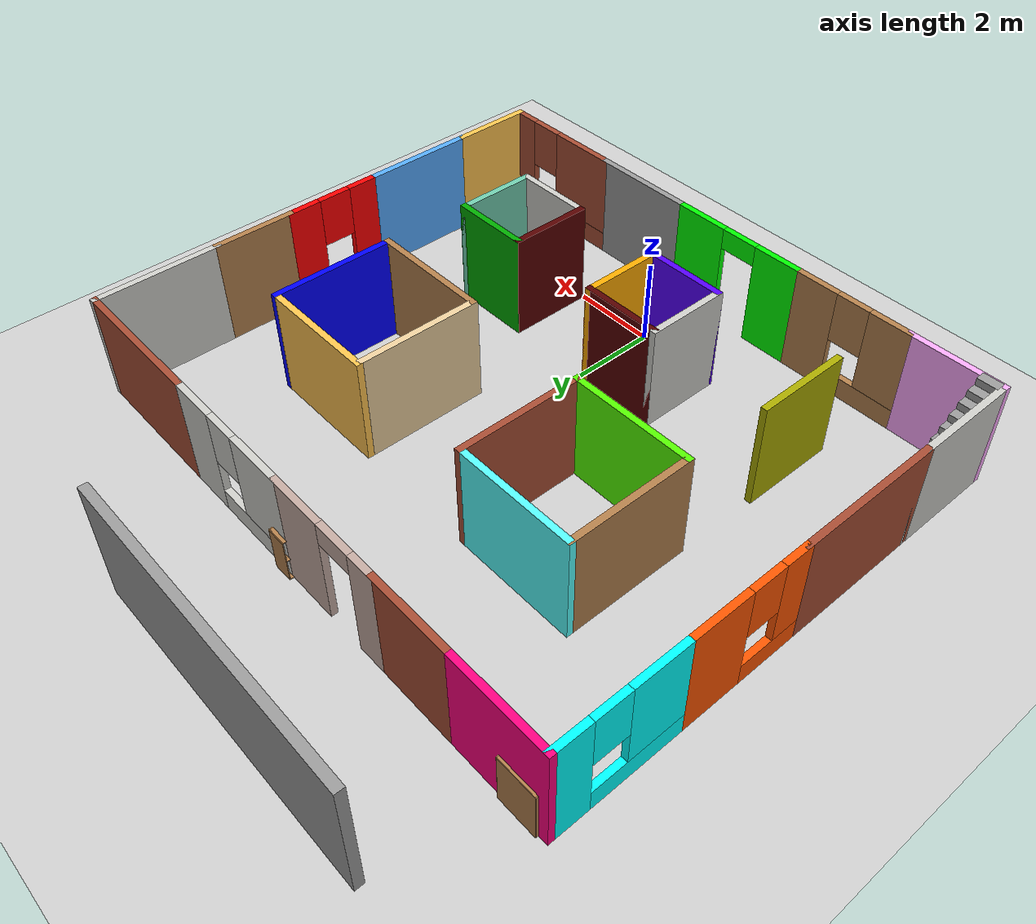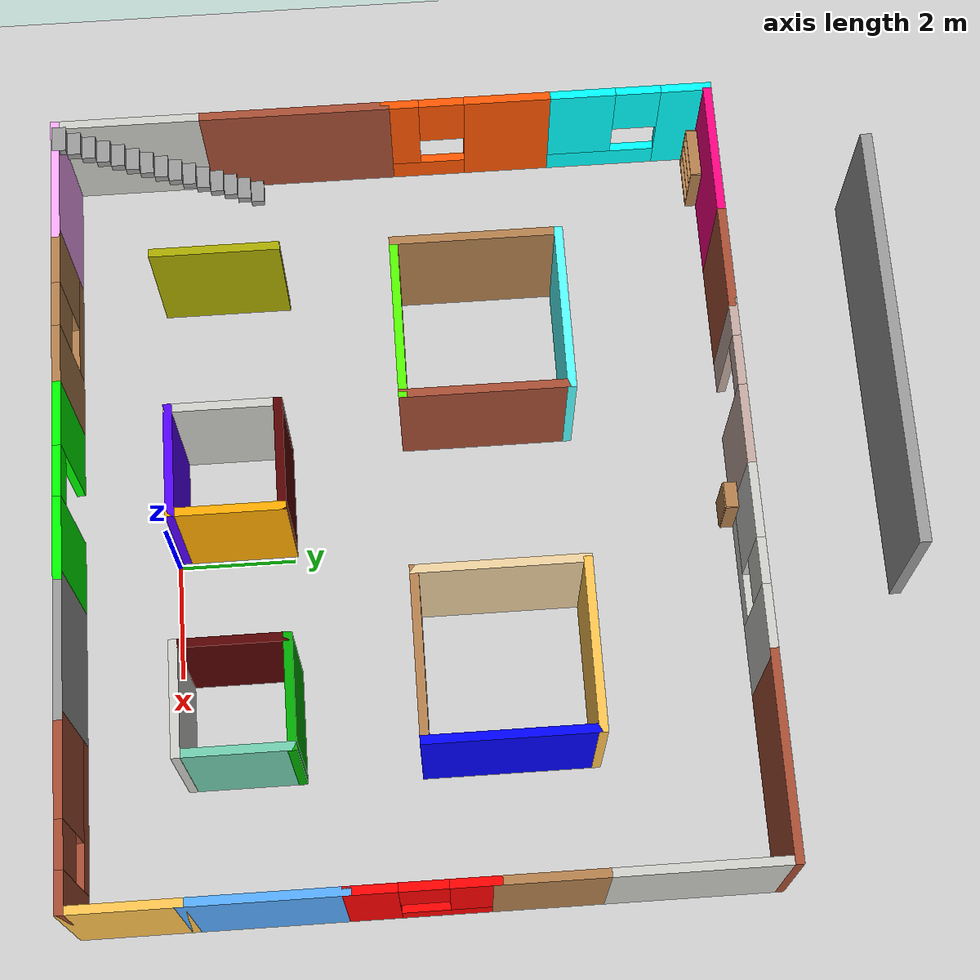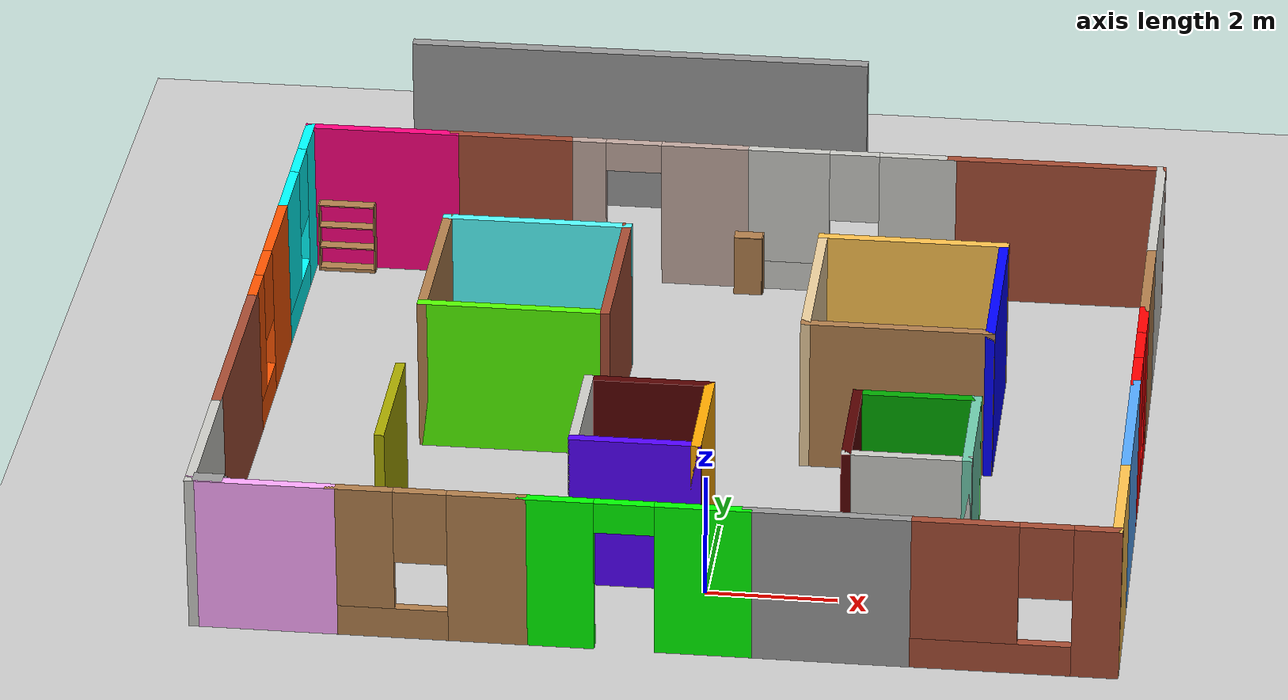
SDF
<sdf version="1.7">
 <world name="default">
  <model name="ground_plane">
   <static>1</static>
   <link name="link">
    <collision name="collision">
     <geometry><plane><normal>0 0 1</normal><size>100 100</size></plane></geometry>
     <surface><friction><ode><mu>100</mu><mu2>50</mu2></ode></friction></surface>
    </collision>
    <visual name="visual">
     <cast_shadows>0</cast_shadows>
     <geometry><plane><normal>0 0 1</normal><size>100 100</size></plane></geometry>
     <material>
      <script><uri>file://media/materials/scripts/gazebo.material</uri><name>Gazebo/Grey</name></script>
     </material>
    </visual>
   </link>
  </model>
  <model name="rainbow_house">
   <pose>-0.62277 4.02769 0 0 -0 0</pose>
   <link name="Stairs_0">
    <visual name="Stairs_0_Visual_0">
     <pose>-6.6068 -2.41526 0.083333 0 -0 0</pose>
     <geometry><box><size>0.454216 0.233333 0.166667</size></box></geometry>
     <material>
      <script><uri>file://media/materials/scripts/gazebo.material</uri><name>Gazebo/Grey</name></script>
      <ambient>1 1 1 1</ambient>
     </material>
     <meta><layer>0</layer></meta>
    </visual>
    <collision name="Stairs_0_Collision_0">
     <geometry><box><size>0.454216 0.233333 0.166667</size></box></geometry>
     <pose>-6.6068 -2.41526 0.083333 0 -0 0</pose>
    </collision>
    <visual name="Stairs_0_Visual_1">
     <pose>-6.6068 -2.64859 0.25 0 -0 0</pose>
     <geometry><box><size>0.454216 0.233333 0.166667</size></box></geometry>
     <material>
      <script><uri>file://media/materials/scripts/gazebo.material</uri><name>Gazebo/Grey</name></script>
      <ambient>1 1 1 1</ambient>
     </material>
     <meta><layer>0</layer></meta>
    </visual>
    <collision name="Stairs_0_Collision_1">
     <geometry><box><size>0.454216 0.233333 0.166667</size></box></geometry>
     <pose>-6.6068 -2.64859 0.25 0 -0 0</pose>
    </collision>
    <visual name="Stairs_0_Visual_2">
     <pose>-6.6068 -2.88193 0.416667 0 -0 0</pose>
     <geometry><box><size>0.454216 0.233333 0.166667</size></box></geometry>
     <material>
      <script><uri>file://media/materials/scripts/gazebo.material</uri><name>Gazebo/Grey</name></script>
      <ambient>1 1 1 1</ambient>
     </material>
     <meta><layer>0</layer></meta>
    </visual>
    <collision name="Stairs_0_Collision_2">
     <geometry><box><size>0.454216 0.233333 0.166667</size></box></geometry>
     <pose>-6.6068 -2.88193 0.416667 0 -0 0</pose>
    </collision>
    <visual name="Stairs_0_Visual_3">
     <pose>-6.6068 -3.11526 0.583333 0 -0 0</pose>
     <geometry><box><size>0.454216 0.233333 0.166667</size></box></geometry>
     <material>
      <script><uri>file://media/materials/scripts/gazebo.material</uri><name>Gazebo/Grey</name></script>
      <ambient>1 1 1 1</ambient>
     </material>
     <meta><layer>0</layer></meta>
    </visual>
    <collision name="Stairs_0_Collision_3">
     <geometry><box><size>0.454216 0.233333 0.166667</size></box></geometry>
     <pose>-6.6068 -3.11526 0.583333 0 -0 0</pose>
    </collision>
    <visual name="Stairs_0_Visual_4">
     <pose>-6.6068 -3.34859 0.75 0 -0 0</pose>
     <geometry><box><size>0.454216 0.233333 0.166667</size></box></geometry>
     <material>
      <script><uri>file://media/materials/scripts/gazebo.material</uri><name>Gazebo/Grey</name></script>
      <ambient>1 1 1 1</ambient>
     </material>
     <meta><layer>0</layer></meta>
    </visual>
    <collision name="Stairs_0_Collision_4">
     <geometry><box><size>0.454216 0.233333 0.166667</size></box></geometry>
     <pose>-6.6068 -3.34859 0.75 0 -0 0</pose>
    </collision>
    <visual name="Stairs_0_Visual_5">
     <pose>-6.6068 -3.58193 0.916667 0 -0 0</pose>
     <geometry><box><size>0.454216 0.233333 0.166667</size></box></geometry>
     <material>
      <script><uri>file://media/materials/scripts/gazebo.material</uri><name>Gazebo/Grey</name></script>
      <ambient>1 1 1 1</ambient>
     </material>
     <meta><layer>0</layer></meta>
    </visual>
    <collision name="Stairs_0_Collision_5">
     <geometry><box><size>0.454216 0.233333 0.166667</size></box></geometry>
     <pose>-6.6068 -3.58193 0.916667 0 -0 0</pose>
    </collision>
    <visual name="Stairs_0_Visual_6">
     <pose>-6.6068 -3.81526 1.08333 0 -0 0</pose>
     <geometry><box><size>0.454216 0.233333 0.166667</size></box></geometry>
     <material>
      <script><uri>file://media/materials/scripts/gazebo.material</uri><name>Gazebo/Grey</name></script>
      <ambient>1 1 1 1</ambient>
     </material>
     <meta><layer>0</layer></meta>
    </visual>
    <collision name="Stairs_0_Collision_6">
     <geometry><box><size>0.454216 0.233333 0.166667</size></box></geometry>
     <pose>-6.6068 -3.81526 1.08333 0 -0 0</pose>
    </collision>
    <visual name="Stairs_0_Visual_7">
     <pose>-6.6068 -4.04859 1.25 0 -0 0</pose>
     <geometry><box><size>0.454216 0.233333 0.166667</size></box></geometry>
     <material>
      <script><uri>file://media/materials/scripts/gazebo.material</uri><name>Gazebo/Grey</name></script>
      <ambient>1 1 1 1</ambient>
     </material>
     <meta><layer>0</layer></meta>
    </visual>
    <collision name="Stairs_0_Collision_7">
     <geometry><box><size>0.454216 0.233333 0.166667</size></box></geometry>
     <pose>-6.6068 -4.04859 1.25 0 -0 0</pose>
    </collision>
    <visual name="Stairs_0_Visual_8">
     <pose>-6.6068 -4.28193 1.41667 0 -0 0</pose>
     <geometry><box><size>0.454216 0.233333 0.166667</size></box></geometry>
     <material>
      <script><uri>file://media/materials/scripts/gazebo.material</uri><name>Gazebo/Grey</name></script>
      <ambient>1 1 1 1</ambient>
     </material>
     <meta><layer>0</layer></meta>
    </visual>
    <collision name="Stairs_0_Collision_8">
     <geometry><box><size>0.454216 0.233333 0.166667</size></box></geometry>
     <pose>-6.6068 -4.28193 1.41667 0 -0 0</pose>
    </collision>
    <visual name="Stairs_0_Visual_9">
     <pose>-6.6068 -4.51526 1.58333 0 -0 0</pose>
     <geometry><box><size>0.454216 0.233333 0.166667</size></box></geometry>
     <material>
      <script><uri>file://media/materials/scripts/gazebo.material</uri><name>Gazebo/Grey</name></script>
      <ambient>1 1 1 1</ambient>
     </material>
     <meta><layer>0</layer></meta>
    </visual>
    <collision name="Stairs_0_Collision_9">
     <geometry><box><size>0.454216 0.233333 0.166667</size></box></geometry>
     <pose>-6.6068 -4.51526 1.58333 0 -0 0</pose>
    </collision>
    <visual name="Stairs_0_Visual_10">
     <pose>-6.6068 -4.74859 1.75 0 -0 0</pose>
     <geometry><box><size>0.454216 0.233333 0.166667</size></box></geometry>
     <material>
      <script><uri>file://media/materials/scripts/gazebo.material</uri><name>Gazebo/Grey</name></script>
      <ambient>1 1 1 1</ambient>
     </material>
     <meta><layer>0</layer></meta>
    </visual>
    <collision name="Stairs_0_Collision_10">
     <geometry><box><size>0.454216 0.233333 0.166667</size></box></geometry>
     <pose>-6.6068 -4.74859 1.75 0 -0 0</pose>
    </collision>
    <visual name="Stairs_0_Visual_11">
     <pose>-6.6068 -4.98193 1.91667 0 -0 0</pose>
     <geometry><box><size>0.454216 0.233333 0.166667</size></box></geometry>
     <material>
      <script><uri>file://media/materials/scripts/gazebo.material</uri><name>Gazebo/Grey</name></script>
      <ambient>1 1 1 1</ambient>
     </material>
     <meta><layer>0</layer></meta>
    </visual>
    <collision name="Stairs_0_Collision_11">
     <geometry><box><size>0.454216 0.233333 0.166667</size></box></geometry>
     <pose>-6.6068 -4.98193 1.91667 0 -0 0</pose>
    </collision>
    <visual name="Stairs_0_Visual_12">
     <pose>-6.6068 -5.21526 2.08333 0 -0 0</pose>
     <geometry><box><size>0.454216 0.233333 0.166667</size></box></geometry>
     <material>
      <script><uri>file://media/materials/scripts/gazebo.material</uri><name>Gazebo/Grey</name></script>
      <ambient>1 1 1 1</ambient>
     </material>
     <meta><layer>0</layer></meta>
    </visual>
    <collision name="Stairs_0_Collision_12">
     <geometry><box><size>0.454216 0.233333 0.166667</size></box></geometry>
     <pose>-6.6068 -5.21526 2.08333 0 -0 0</pose>
    </collision>
    <visual name="Stairs_0_Visual_13">
     <pose>-6.6068 -5.44859 2.25 0 -0 0</pose>
     <geometry><box><size>0.454216 0.233333 0.166667</size></box></geometry>
     <material>
      <script><uri>file://media/materials/scripts/gazebo.material</uri><name>Gazebo/Grey</name></script>
      <ambient>1 1 1 1</ambient>
     </material>
     <meta><layer>0</layer></meta>
    </visual>
    <collision name="Stairs_0_Collision_13">
     <geometry><box><size>0.454216 0.233333 0.166667</size></box></geometry>
     <pose>-6.6068 -5.44859 2.25 0 -0 0</pose>
    </collision>
    <visual name="Stairs_0_Visual_14">
     <pose>-6.6068 -5.68193 2.41667 0 -0 0</pose>
     <geometry><box><size>0.454216 0.233333 0.166667</size></box></geometry>
     <material>
      <script><uri>file://media/materials/scripts/gazebo.material</uri><name>Gazebo/Grey</name></script>
      <ambient>1 1 1 1</ambient>
     </material>
     <meta><layer>0</layer></meta>
    </visual>
    <collision name="Stairs_0_Collision_14">
     <geometry><box><size>0.454216 0.233333 0.166667</size></box></geometry>
     <pose>-6.6068 -5.68193 2.41667 0 -0 0</pose>
    </collision>
   </link>
   <link name="Wall_10">
    <collision name="Wall_10_Collision">
     <geometry><box><size>2 0.15 2.5</size></box></geometry>
     <pose>0 0 1.25 0 -0 0</pose>
    </collision>
    <visual name="Wall_10_Visual">
     <pose>0 0 1.25 0 -0 0</pose>
     <geometry><box><size>2 0.15 2.5</size></box></geometry>
     <material>
      <script><uri>file://media/materials/scripts/gazebo.material</uri><name>Gazebo/Grey</name></script>
      <ambient>0.333333 0 0 1</ambient>
     </material>
     <meta><layer>0</layer></meta>
    </visual>
    <pose>2.71455 -2.97747 0 0 -0 1.5708</pose>
   </link>
   <link name="Wall_11">
    <collision name="Wall_11_Collision">
     <geometry><box><size>1.96045 0.15 2.5</size></box></geometry>
     <pose>0 0 1.25 0 -0 0</pose>
    </collision>
    <visual name="Wall_11_Visual">
     <pose>0 0 1.25 0 -0 0</pose>
     <geometry><box><size>1.96045 0.15 2.5</size></box></geometry>
     <material>
      <script><uri>file://media/materials/scripts/gazebo.material</uri><name>Gazebo/Grey</name></script>
      <ambient>0 0.666667 0 1</ambient>
     </material>
     <meta><layer>0</layer></meta>
    </visual>
    <pose>3.61978 -2.05 0 0 -0 0</pose>
   </link>
   <link name="Wall_12">
    <collision name="Wall_12_Collision">
     <geometry><box><size>2 0.15 2.5</size></box></geometry>
     <pose>0 0 1.25 0 -0 0</pose>
    </collision>
    <visual name="Wall_12_Visual">
     <pose>0 0 1.25 0 -0 0</pose>
     <geometry><box><size>2 0.15 2.5</size></box></geometry>
     <material>
      <script><uri>file://media/materials/scripts/gazebo.material</uri><name>Gazebo/Grey</name></script>
      <ambient>0.435294 0.796078 0.67451 1</ambient>
     </material>
     <meta><layer>0</layer></meta>
    </visual>
    <pose>4.52253 -2.975 0 0 -0 -1.5708</pose>
   </link>
   <link name="Wall_13">
    <collision name="Wall_13_Collision">
     <geometry><box><size>1.96045 0.15 2.5</size></box></geometry>
     <pose>0 0 1.25 0 -0 0</pose>
    </collision>
    <visual name="Wall_13_Visual">
     <pose>0 0 1.25 0 -0 0</pose>
     <geometry><box><size>1.96045 0.15 2.5</size></box></geometry>
     <material>
      <script><uri>file://media/materials/scripts/gazebo.material</uri><name>Gazebo/CeilingTiled</name></script>
      <ambient>1 1 1 1</ambient>
     </material>
     <meta><layer>0</layer></meta>
    </visual>
    <pose>3.61978 -3.9 0 0 -0 3.14159</pose>
   </link>
   <link name="Wall_2">
    <collision name="Wall_2_Collision">
     <geometry><box><size>2 0.15 2.5</size></box></geometry>
     <pose>0 0 1.25 0 -0 0</pose>
    </collision>
    <visual name="Wall_2_Visual">
     <pose>0 0 1.25 0 -0 0</pose>
     <geometry><box><size>2 0.15 2.5</size></box></geometry>
     <material>
      <script><uri>file://media/materials/scripts/gazebo.material</uri><name>Gazebo/CeilingTiled</name></script>
      <ambient>0.435294 0.796078 0.67451 1</ambient>
     </material>
     <meta><layer>0</layer></meta>
    </visual>
    <pose>-1.38095 -2.975 0 0 -0 1.5708</pose>
   </link>
   <link name="Wall_22">
    <collision name="Wall_22_Collision">
     <geometry><box><size>3 0.15 2.5</size></box></geometry>
     <pose>0 0 1.25 0 -0 0</pose>
    </collision>
    <visual name="Wall_22_Visual">
     <pose>0 0 1.25 0 -0 0</pose>
     <geometry><box><size>3 0.15 2.5</size></box></geometry>
     <material>
      <script><uri>file://media/materials/scripts/gazebo.material</uri><name>Gazebo/Wood</name></script>
      <ambient>1 1 1 1</ambient>
     </material>
     <meta><layer>0</layer></meta>
    </visual>
    <pose>3.14584 0.047664 0 0 -0 3.14159</pose>
   </link>
   <link name="Wall_25">
    <collision name="Wall_25_Collision">
     <geometry><box><size>3 0.15 2.5</size></box></geometry>
     <pose>0 0 1.25 0 -0 0</pose>
    </collision>
    <visual name="Wall_25_Visual">
     <pose>0 0 1.25 0 -0 0</pose>
     <geometry><box><size>3 0.15 2.5</size></box></geometry>
     <material>
      <script><uri>file://media/materials/scripts/gazebo.material</uri><name>Gazebo/Grey</name></script>
      <ambient>0 0 1 1</ambient>
     </material>
     <meta><layer>0</layer></meta>
    </visual>
    <pose>4.57084 1.47266 0 0 -0 1.5708</pose>
   </link>
   <link name="Wall_26">
    <collision name="Wall_26_Collision">
     <geometry><box><size>3 0.15 2.5</size></box></geometry>
     <pose>0 0 1.25 0 -0 0</pose>
    </collision>
    <visual name="Wall_26_Visual">
     <pose>0 0 1.25 0 -0 0</pose>
     <geometry><box><size>3 0.15 2.5</size></box></geometry>
     <material>
      <script><uri>file://media/materials/scripts/gazebo.material</uri><name>Gazebo/Grey</name></script>
      <ambient>1 0.764706 0.305882 1</ambient>
     </material>
     <meta><layer>0</layer></meta>
    </visual>
    <pose>3.14584 2.89766 0 0 -0 3.14159</pose>
   </link>
   <link name="Wall_27">
    <collision name="Wall_27_Collision">
     <geometry><box><size>3 0.15 2.5</size></box></geometry>
     <pose>0 0 1.25 0 -0 0</pose>
    </collision>
    <visual name="Wall_27_Visual">
     <pose>0 0 1.25 0 -0 0</pose>
     <geometry><box><size>3 0.15 2.5</size></box></geometry>
     <material>
      <script><uri>file://media/materials/scripts/gazebo.material</uri><name>Gazebo/Grey</name></script>
      <ambient>0.921569 0.807843 0.615686 1</ambient>
     </material>
     <meta><layer>0</layer></meta>
    </visual>
    <pose>1.72084 1.47266 0 0 -0 -1.5708</pose>
   </link>
   <link name="Wall_33">
    <collision name="Wall_33_Collision">
     <geometry><box><size>3 0.15 2.5</size></box></geometry>
     <pose>0 0 1.25 0 -0 0</pose>
    </collision>
    <visual name="Wall_33_Visual">
     <pose>0 0 1.25 0 -0 0</pose>
     <geometry><box><size>3 0.15 2.5</size></box></geometry>
     <material>
      <script><uri>file://media/materials/scripts/gazebo.material</uri><name>Gazebo/Bricks</name></script>
      <ambient>1 1 1 1</ambient>
     </material>
     <meta><layer>0</layer></meta>
    </visual>
    <pose>-1.37916 1.47266 0 0 -0 1.5708</pose>
   </link>
   <link name="Wall_34">
    <collision name="Wall_34_Collision">
     <geometry><box><size>3 0.15 2.5</size></box></geometry>
     <pose>0 0 1.25 0 -0 0</pose>
    </collision>
    <visual name="Wall_34_Visual">
     <pose>0 0 1.25 0 -0 0</pose>
     <geometry><box><size>3 0.15 2.5</size></box></geometry>
     <material>
      <script><uri>file://media/materials/scripts/gazebo.material</uri><name>Gazebo/Grey</name></script>
      <ambient>0.333333 1 1 1</ambient>
     </material>
     <meta><layer>0</layer></meta>
    </visual>
    <pose>-2.80416 2.89766 0 0 -0 3.14159</pose>
   </link>
   <link name="Wall_35">
    <collision name="Wall_35_Collision">
     <geometry><box><size>3 0.15 2.5</size></box></geometry>
     <pose>0 0 1.25 0 -0 0</pose>
    </collision>
    <visual name="Wall_35_Visual">
     <pose>0 0 1.25 0 -0 0</pose>
     <geometry><box><size>3 0.15 2.5</size></box></geometry>
     <material>
      <script><uri>file://media/materials/scripts/gazebo.material</uri><name>Gazebo/Wood</name></script>
      <ambient>1 1 1 1</ambient>
     </material>
     <meta><layer>0</layer></meta>
    </visual>
    <pose>-4.22916 1.47266 0 0 -0 -1.5708</pose>
   </link>
   <link name="Wall_36">
    <collision name="Wall_36_Collision">
     <geometry><box><size>3 0.15 2.5</size></box></geometry>
     <pose>0 0 1.25 0 -0 0</pose>
    </collision>
    <visual name="Wall_36_Visual">
     <pose>0 0 1.25 0 -0 0</pose>
     <geometry><box><size>3 0.15 2.5</size></box></geometry>
     <material>
      <script><uri>file://media/materials/scripts/gazebo.material</uri><name>Gazebo/Grey</name></script>
      <ambient>0.333333 1 0 1</ambient>
     </material>
     <meta><layer>0</layer></meta>
    </visual>
    <pose>-2.80416 0.047664 0 0 -0 0</pose>
   </link>
   <link name="Wall_4">
    <collision name="Wall_4_Collision">
     <geometry><box><size>2 0.15 2.5</size></box></geometry>
     <pose>0 0 1.25 0 -0 0</pose>
    </collision>
    <visual name="Wall_4_Visual">
     <pose>0 0 1.25 0 -0 0</pose>
     <geometry><box><size>2 0.15 2.5</size></box></geometry>
     <material>
      <script><uri>file://media/materials/scripts/gazebo.material</uri><name>Gazebo/Grey</name></script>
      <ambient>0.333333 0 0 1</ambient>
     </material>
     <meta><layer>0</layer></meta>
    </visual>
    <pose>-0.455946 -2.05 0 0 -0 0</pose>
   </link>
   <link name="Wall_42">
    <collision name="Wall_42_Collision">
     <geometry><box><size>2 0.15 2.5</size></box></geometry>
     <pose>0 0 1.25 0 -0 0</pose>
    </collision>
    <visual name="Wall_42_Visual">
     <pose>0 0 1.25 0 -0 0</pose>
     <geometry><box><size>2 0.15 2.5</size></box></geometry>
     <material>
      <script><uri>file://media/materials/scripts/gazebo.material</uri><name>Gazebo/Grey</name></script>
      <ambient>1 0.764706 0.305882 1</ambient>
     </material>
     <meta><layer>0</layer></meta>
    </visual>
    <pose>6.875 -4.825 0 0 -0 -1.5708</pose>
   </link>
   <link name="Wall_44">
    <collision name="Wall_44_Collision">
     <geometry><box><size>2.75 0.15 2.5</size></box></geometry>
     <pose>0 0 1.25 0 -0 0</pose>
    </collision>
    <visual name="Wall_44_Visual">
     <pose>0 0 1.25 0 -0 0</pose>
     <geometry><box><size>2.75 0.15 2.5</size></box></geometry>
     <material>
      <script><uri>file://media/materials/scripts/gazebo.material</uri><name>Gazebo/Grey</name></script>
      <ambient>0.333333 0.666667 1 1</ambient>
     </material>
     <meta><layer>0</layer></meta>
    </visual>
    <pose>6.875 -2.6 0 0 -0 1.5708</pose>
   </link>
   <link name="Wall_45">
    <pose>6.875 -0.125 0 0 -0 1.5708</pose>
    <visual name="Wall_45_Visual_0">
     <pose>-0.81636 0 1.25 0 -0 0</pose>
     <geometry><box><size>0.86728 0.15 2.5</size></box></geometry>
     <material>
      <script><uri>file://media/materials/scripts/gazebo.material</uri><name>Gazebo/Grey</name></script>
      <ambient>1 0 0 1</ambient>
     </material>
     <meta><layer>0</layer></meta>
    </visual>
    <collision name="Wall_45_Collision_0">
     <geometry><box><size>0.86728 0.15 2.5</size></box></geometry>
     <pose>-0.81636 0 1.25 0 -0 0</pose>
    </collision>
    <visual name="Wall_45_Visual_1">
     <pose>0.43364 0 0.25 0 -0 0</pose>
     <geometry><box><size>1.63272 0.15 0.5</size></box></geometry>
     <material>
      <script><uri>file://media/materials/scripts/gazebo.material</uri><name>Gazebo/Grey</name></script>
      <ambient>1 0 0 1</ambient>
     </material>
     <meta><layer>0</layer></meta>
    </visual>
    <collision name="Wall_45_Collision_1">
     <geometry><box><size>1.63272 0.15 0.5</size></box></geometry>
     <pose>0.43364 0 0.25 0 -0 0</pose>
    </collision>
    <visual name="Wall_45_Visual_2">
     <pose>0.83364 0 1.5 0 -0 0</pose>
     <geometry><box><size>0.83272 0.15 2</size></box></geometry>
     <material>
      <script><uri>file://media/materials/scripts/gazebo.material</uri><name>Gazebo/Grey</name></script>
      <ambient>1 0 0 1</ambient>
     </material>
     <meta><layer>0</layer></meta>
    </visual>
    <collision name="Wall_45_Collision_2">
     <geometry><box><size>0.83272 0.15 2</size></box></geometry>
     <pose>0.83364 0 1.5 0 -0 0</pose>
    </collision>
    <visual name="Wall_45_Visual_3">
     <pose>0.01728 0 1.9 0 -0 0</pose>
     <geometry><box><size>0.8 0.15 1.2</size></box></geometry>
     <material>
      <script><uri>file://media/materials/scripts/gazebo.material</uri><name>Gazebo/Grey</name></script>
      <ambient>1 0 0 1</ambient>
     </material>
     <meta><layer>0</layer></meta>
    </visual>
    <collision name="Wall_45_Collision_3">
     <geometry><box><size>0.8 0.15 1.2</size></box></geometry>
     <pose>0.01728 0 1.9 0 -0 0</pose>
    </collision>
   </link>
   <link name="Wall_46">
    <collision name="Wall_46_Collision">
     <geometry><box><size>2 0.15 2.5</size></box></geometry>
     <pose>0 0 1.25 0 -0 0</pose>
    </collision>
    <visual name="Wall_46_Visual">
     <pose>0 0 1.25 0 -0 0</pose>
     <geometry><box><size>2 0.15 2.5</size></box></geometry>
     <material>
      <script><uri>file://media/materials/scripts/gazebo.material</uri><name>Gazebo/Wood</name></script>
      <ambient>1 1 1 1</ambient>
     </material>
     <meta><layer>0</layer></meta>
    </visual>
    <pose>6.875 1.975 0 0 -0 1.5708</pose>
   </link>
   <link name="Wall_48">
    <collision name="Wall_48_Collision">
     <geometry><box><size>3 0.15 2.5</size></box></geometry>
     <pose>0 0 1.25 0 -0 0</pose>
    </collision>
    <visual name="Wall_48_Visual">
     <pose>0 0 1.25 0 -0 0</pose>
     <geometry><box><size>3 0.15 2.5</size></box></geometry>
     <material>
      <script><uri>file://media/materials/scripts/gazebo.material</uri><name>Gazebo/CeilingTiled</name></script>
      <ambient>1 1 1 1</ambient>
     </material>
     <meta><layer>0</layer></meta>
    </visual>
    <pose>6.875 4.325 0 0 -0 1.5708</pose>
   </link>
   <link name="Wall_49">
    <collision name="Wall_49_Collision">
     <geometry><box><size>3.5 0.15 2.5</size></box></geometry>
     <pose>0 0 1.25 0 -0 0</pose>
    </collision>
    <visual name="Wall_49_Visual">
     <pose>0 0 1.25 0 -0 0</pose>
     <geometry><box><size>3.5 0.15 2.5</size></box></geometry>
     <material>
      <script><uri>file://media/materials/scripts/gazebo.material</uri><name>Gazebo/Bricks</name></script>
      <ambient>1 1 1 1</ambient>
     </material>
     <meta><layer>0</layer></meta>
    </visual>
    <pose>5.2 5.75 0 0 -0 3.14159</pose>
   </link>
   <link name="Wall_5">
    <collision name="Wall_5_Collision">
     <geometry><box><size>2 0.15 2.5</size></box></geometry>
     <pose>0 0 1.25 0 -0 0</pose>
    </collision>
    <visual name="Wall_5_Visual">
     <pose>0 0 1.25 0 -0 0</pose>
     <geometry><box><size>2 0.15 2.5</size></box></geometry>
     <material>
      <script><uri>file://media/materials/scripts/gazebo.material</uri><name>Gazebo/Grey</name></script>
      <ambient>1 0.666667 0 1</ambient>
     </material>
     <meta><layer>0</layer></meta>
    </visual>
    <pose>0.469054 -2.975 0 0 -0 -1.5708</pose>
   </link>
   <link name="Wall_50">
    <pose>1.85 5.75 0 0 -0 3.14159</pose>
    <visual name="Wall_50_Visual_0">
     <pose>-1.13041 0 1.25 0 -0 0</pose>
     <geometry><box><size>1.23918 0.15 2.5</size></box></geometry>
     <material>
      <script><uri>file://media/materials/scripts/gazebo.material</uri><name>Gazebo/CeilingTiled</name></script>
      <ambient>1 1 1 1</ambient>
     </material>
     <meta><layer>0</layer></meta>
    </visual>
    <collision name="Wall_50_Collision_0">
     <geometry><box><size>1.23918 0.15 2.5</size></box></geometry>
     <pose>-1.13041 0 1.25 0 -0 0</pose>
    </collision>
    <visual name="Wall_50_Visual_1">
     <pose>0.619589 0 0.25 0 -0 0</pose>
     <geometry><box><size>2.26082 0.15 0.5</size></box></geometry>
     <material>
      <script><uri>file://media/materials/scripts/gazebo.material</uri><name>Gazebo/CeilingTiled</name></script>
      <ambient>1 1 1 1</ambient>
     </material>
     <meta><layer>0</layer></meta>
    </visual>
    <collision name="Wall_50_Collision_1">
     <geometry><box><size>2.26082 0.15 0.5</size></box></geometry>
     <pose>0.619589 0 0.25 0 -0 0</pose>
    </collision>
    <visual name="Wall_50_Visual_2">
     <pose>1.01959 0 1.5 0 -0 0</pose>
     <geometry><box><size>1.46082 0.15 2</size></box></geometry>
     <material>
      <script><uri>file://media/materials/scripts/gazebo.material</uri><name>Gazebo/CeilingTiled</name></script>
      <ambient>1 1 1 1</ambient>
     </material>
     <meta><layer>0</layer></meta>
    </visual>
    <collision name="Wall_50_Collision_2">
     <geometry><box><size>1.46082 0.15 2</size></box></geometry>
     <pose>1.01959 0 1.5 0 -0 0</pose>
    </collision>
    <visual name="Wall_50_Visual_3">
     <pose>-0.110823 0 1.9 0 -0 0</pose>
     <geometry><box><size>0.8 0.15 1.2</size></box></geometry>
     <material>
      <script><uri>file://media/materials/scripts/gazebo.material</uri><name>Gazebo/CeilingTiled</name></script>
      <ambient>1 1 1 1</ambient>
     </material>
     <meta><layer>0</layer></meta>
    </visual>
    <collision name="Wall_50_Collision_3">
     <geometry><box><size>0.8 0.15 1.2</size></box></geometry>
     <pose>-0.110823 0 1.9 0 -0 0</pose>
    </collision>
   </link>
   <link name="Wall_52">
    <pose>-1.25 5.75 0 0 -0 3.14159</pose>
    <visual name="Wall_52_Visual_0">
     <pose>-0.796809 0 1.25 0 -0 0</pose>
     <geometry><box><size>1.40638 0.15 2.5</size></box></geometry>
     <material>
      <script><uri>file://media/materials/scripts/gazebo.material</uri><name>Gazebo/Grey</name></script>
      <ambient>0.760784 0.662745 0.627451 1</ambient>
     </material>
     <meta><layer>0</layer></meta>
    </visual>
    <collision name="Wall_52_Collision_0">
     <geometry><box><size>1.40638 0.15 2.5</size></box></geometry>
     <pose>-0.796809 0 1.25 0 -0 0</pose>
    </collision>
    <visual name="Wall_52_Visual_1">
     <pose>1.15319 0 1.25 0 -0 0</pose>
     <geometry><box><size>0.693617 0.15 2.5</size></box></geometry>
     <material>
      <script><uri>file://media/materials/scripts/gazebo.material</uri><name>Gazebo/Grey</name></script>
      <ambient>0.760784 0.662745 0.627451 1</ambient>
     </material>
     <meta><layer>0</layer></meta>
    </visual>
    <collision name="Wall_52_Collision_1">
     <geometry><box><size>0.693617 0.15 2.5</size></box></geometry>
     <pose>1.15319 0 1.25 0 -0 0</pose>
    </collision>
    <visual name="Wall_52_Visual_2">
     <pose>0.356383 0 2.25 0 -0 0</pose>
     <geometry><box><size>0.9 0.15 0.5</size></box></geometry>
     <material>
      <script><uri>file://media/materials/scripts/gazebo.material</uri><name>Gazebo/Grey</name></script>
      <ambient>0.760784 0.662745 0.627451 1</ambient>
     </material>
     <meta><layer>0</layer></meta>
    </visual>
    <collision name="Wall_52_Collision_2">
     <geometry><box><size>0.9 0.15 0.5</size></box></geometry>
     <pose>0.356383 0 2.25 0 -0 0</pose>
    </collision>
   </link>
   <link name="Wall_53">
    <collision name="Wall_53_Collision">
     <geometry><box><size>2 0.15 2.5</size></box></geometry>
     <pose>0 0 1.25 0 -0 0</pose>
    </collision>
    <visual name="Wall_53_Visual">
     <pose>0 0 1.25 0 -0 0</pose>
     <geometry><box><size>2 0.15 2.5</size></box></geometry>
     <material>
      <script><uri>file://media/materials/scripts/gazebo.material</uri><name>Gazebo/Bricks</name></script>
      <ambient>1 1 1 1</ambient>
     </material>
     <meta><layer>0</layer></meta>
    </visual>
    <pose>-3.6 5.75 0 0 -0 3.14159</pose>
   </link>
   <link name="Wall_56">
    <collision name="Wall_56_Collision">
     <geometry><box><size>2.5 0.15 2.5</size></box></geometry>
     <pose>0 0 1.25 0 -0 0</pose>
    </collision>
    <visual name="Wall_56_Visual">
     <pose>0 0 1.25 0 -0 0</pose>
     <geometry><box><size>2.5 0.15 2.5</size></box></geometry>
     <material>
      <script><uri>file://media/materials/scripts/gazebo.material</uri><name>Gazebo/Grey</name></script>
      <ambient>1 0 0.498039 1</ambient>
     </material>
     <meta><layer>0</layer></meta>
    </visual>
    <pose>-5.7 5.75 0 0 -0 3.14159</pose>
   </link>
   <link name="Wall_57">
    <pose>-6.875 4.325 0 0 -0 -1.5708</pose>
    <visual name="Wall_57_Visual_0">
     <pose>-1.05348 0 1.25 0 -0 0</pose>
     <geometry><box><size>0.893041 0.15 2.5</size></box></geometry>
     <material>
      <script><uri>file://media/materials/scripts/gazebo.material</uri><name>Gazebo/Grey</name></script>
      <ambient>0 1 1 1</ambient>
     </material>
     <meta><layer>0</layer></meta>
    </visual>
    <collision name="Wall_57_Collision_0">
     <geometry><box><size>0.893041 0.15 2.5</size></box></geometry>
     <pose>-1.05348 0 1.25 0 -0 0</pose>
    </collision>
    <visual name="Wall_57_Visual_1">
     <pose>0.446521 0 0.25 0 -0 0</pose>
     <geometry><box><size>2.10696 0.15 0.5</size></box></geometry>
     <material>
      <script><uri>file://media/materials/scripts/gazebo.material</uri><name>Gazebo/Grey</name></script>
      <ambient>0 1 1 1</ambient>
     </material>
     <meta><layer>0</layer></meta>
    </visual>
    <collision name="Wall_57_Collision_1">
     <geometry><box><size>2.10696 0.15 0.5</size></box></geometry>
     <pose>0.446521 0 0.25 0 -0 0</pose>
    </collision>
    <visual name="Wall_57_Visual_2">
     <pose>0.846521 0 1.5 0 -0 0</pose>
     <geometry><box><size>1.30696 0.15 2</size></box></geometry>
     <material>
      <script><uri>file://media/materials/scripts/gazebo.material</uri><name>Gazebo/Grey</name></script>
      <ambient>0 1 1 1</ambient>
     </material>
     <meta><layer>0</layer></meta>
    </visual>
    <collision name="Wall_57_Collision_2">
     <geometry><box><size>1.30696 0.15 2</size></box></geometry>
     <pose>0.846521 0 1.5 0 -0 0</pose>
    </collision>
    <visual name="Wall_57_Visual_3">
     <pose>-0.206959 0 1.9 0 -0 0</pose>
     <geometry><box><size>0.8 0.15 1.2</size></box></geometry>
     <material>
      <script><uri>file://media/materials/scripts/gazebo.material</uri><name>Gazebo/Grey</name></script>
      <ambient>0 1 1 1</ambient>
     </material>
     <meta><layer>0</layer></meta>
    </visual>
    <collision name="Wall_57_Collision_3">
     <geometry><box><size>0.8 0.15 1.2</size></box></geometry>
     <pose>-0.206959 0 1.9 0 -0 0</pose>
    </collision>
   </link>
   <link name="Wall_58">
    <pose>-6.875 1.475 0 0 -0 -1.5708</pose>
    <visual name="Wall_58_Visual_0">
     <pose>-0.732658 0 1.25 0 -0 0</pose>
     <geometry><box><size>1.53468 0.15 2.5</size></box></geometry>
     <material>
      <script><uri>file://media/materials/scripts/gazebo.material</uri><name>Gazebo/Grey</name></script>
      <ambient>1 0.333333 0 1</ambient>
     </material>
     <meta><layer>0</layer></meta>
    </visual>
    <collision name="Wall_58_Collision_0">
     <geometry><box><size>1.53468 0.15 2.5</size></box></geometry>
     <pose>-0.732658 0 1.25 0 -0 0</pose>
    </collision>
    <visual name="Wall_58_Visual_1">
     <pose>0.767342 0 0.25 0 -0 0</pose>
     <geometry><box><size>1.46532 0.15 0.5</size></box></geometry>
     <material>
      <script><uri>file://media/materials/scripts/gazebo.material</uri><name>Gazebo/Grey</name></script>
      <ambient>1 0.333333 0 1</ambient>
     </material>
     <meta><layer>0</layer></meta>
    </visual>
    <collision name="Wall_58_Collision_1">
     <geometry><box><size>1.46532 0.15 0.5</size></box></geometry>
     <pose>0.767342 0 0.25 0 -0 0</pose>
    </collision>
    <visual name="Wall_58_Visual_2">
     <pose>1.16734 0 1.5 0 -0 0</pose>
     <geometry><box><size>0.665316 0.15 2</size></box></geometry>
     <material>
      <script><uri>file://media/materials/scripts/gazebo.material</uri><name>Gazebo/Grey</name></script>
      <ambient>1 0.333333 0 1</ambient>
     </material>
     <meta><layer>0</layer></meta>
    </visual>
    <collision name="Wall_58_Collision_2">
     <geometry><box><size>0.665316 0.15 2</size></box></geometry>
     <pose>1.16734 0 1.5 0 -0 0</pose>
    </collision>
    <visual name="Wall_58_Visual_3">
     <pose>0.434684 0 1.9 0 -0 0</pose>
     <geometry><box><size>0.8 0.15 1.2</size></box></geometry>
     <material>
      <script><uri>file://media/materials/scripts/gazebo.material</uri><name>Gazebo/Grey</name></script>
      <ambient>1 0.333333 0 1</ambient>
     </material>
     <meta><layer>0</layer></meta>
    </visual>
    <collision name="Wall_58_Collision_3">
     <geometry><box><size>0.8 0.15 1.2</size></box></geometry>
     <pose>0.434684 0 1.9 0 -0 0</pose>
    </collision>
   </link>
   <link name="Wall_6">
    <collision name="Wall_6_Collision">
     <geometry><box><size>2 0.15 2.5</size></box></geometry>
     <pose>0 0 1.25 0 -0 0</pose>
    </collision>
    <visual name="Wall_6_Visual">
     <pose>0 0 1.25 0 -0 0</pose>
     <geometry><box><size>2 0.15 2.5</size></box></geometry>
     <material>
      <script><uri>file://media/materials/scripts/gazebo.material</uri><name>Gazebo/Grey</name></script>
      <ambient>0.333333 0 1 1</ambient>
     </material>
     <meta><layer>0</layer></meta>
    </visual>
    <pose>-0.455946 -3.9 0 0 -0 3.14159</pose>
   </link>
   <link name="Wall_60">
    <collision name="Wall_60_Collision">
     <geometry><box><size>3.5 0.15 2.5</size></box></geometry>
     <pose>0 0 1.25 0 -0 0</pose>
    </collision>
    <visual name="Wall_60_Visual">
     <pose>0 0 1.25 0 -0 0</pose>
     <geometry><box><size>3.5 0.15 2.5</size></box></geometry>
     <material>
      <script><uri>file://media/materials/scripts/gazebo.material</uri><name>Gazebo/Bricks</name></script>
      <ambient>1 1 1 1</ambient>
     </material>
     <meta><layer>0</layer></meta>
    </visual>
    <pose>-6.875 -1.625 0 0 -0 -1.5708</pose>
   </link>
   <link name="Wall_63">
    <pose>5.325 -5.75 0 0 -0 3.14159</pose>
    <visual name="Wall_63_Visual_0">
     <pose>-1.26951 0 1.25 0 -0 0</pose>
     <geometry><box><size>0.710971 0.15 2.5</size></box></geometry>
     <material>
      <script><uri>file://media/materials/scripts/gazebo.material</uri><name>Gazebo/Bricks</name></script>
      <ambient>1 1 1 1</ambient>
     </material>
     <meta><layer>0</layer></meta>
    </visual>
    <collision name="Wall_63_Collision_0">
     <geometry><box><size>0.710971 0.15 2.5</size></box></geometry>
     <pose>-1.26951 0 1.25 0 -0 0</pose>
    </collision>
    <visual name="Wall_63_Visual_1">
     <pose>0.355486 0 0.25 0 -0 0</pose>
     <geometry><box><size>2.53903 0.15 0.5</size></box></geometry>
     <material>
      <script><uri>file://media/materials/scripts/gazebo.material</uri><name>Gazebo/Bricks</name></script>
      <ambient>1 1 1 1</ambient>
     </material>
     <meta><layer>0</layer></meta>
    </visual>
    <collision name="Wall_63_Collision_1">
     <geometry><box><size>2.53903 0.15 0.5</size></box></geometry>
     <pose>0.355486 0 0.25 0 -0 0</pose>
    </collision>
    <visual name="Wall_63_Visual_2">
     <pose>0.755486 0 1.5 0 -0 0</pose>
     <geometry><box><size>1.73903 0.15 2</size></box></geometry>
     <material>
      <script><uri>file://media/materials/scripts/gazebo.material</uri><name>Gazebo/Bricks</name></script>
      <ambient>1 1 1 1</ambient>
     </material>
     <meta><layer>0</layer></meta>
    </visual>
    <collision name="Wall_63_Collision_2">
     <geometry><box><size>1.73903 0.15 2</size></box></geometry>
     <pose>0.755486 0 1.5 0 -0 0</pose>
    </collision>
    <visual name="Wall_63_Visual_3">
     <pose>-0.514029 0 1.9 0 -0 0</pose>
     <geometry><box><size>0.8 0.15 1.2</size></box></geometry>
     <material>
      <script><uri>file://media/materials/scripts/gazebo.material</uri><name>Gazebo/Bricks</name></script>
      <ambient>1 1 1 1</ambient>
     </material>
     <meta><layer>0</layer></meta>
    </visual>
    <collision name="Wall_63_Collision_3">
     <geometry><box><size>0.8 0.15 1.2</size></box></geometry>
     <pose>-0.514029 0 1.9 0 -0 0</pose>
    </collision>
   </link>
   <link name="Wall_64">
    <collision name="Wall_64_Collision">
     <geometry><box><size>2.5 0.15 2.5</size></box></geometry>
     <pose>0 0 1.25 0 -0 0</pose>
    </collision>
    <visual name="Wall_64_Visual">
     <pose>0 0 1.25 0 -0 0</pose>
     <geometry><box><size>2.5 0.15 2.5</size></box></geometry>
     <material>
      <script><uri>file://media/materials/scripts/gazebo.material</uri><name>Gazebo/Grey</name></script>
      <ambient>0 0 0 1</ambient>
     </material>
     <meta><layer>0</layer></meta>
    </visual>
    <pose>2.6 -5.75 0 0 -0 3.14159</pose>
   </link>
   <link name="Wall_65">
    <pose>-0.25 -5.75 0 0 -0 3.14159</pose>
    <visual name="Wall_65_Visual_0">
     <pose>-1.02575 0 1.25 0 -0 0</pose>
     <geometry><box><size>1.44851 0.15 2.5</size></box></geometry>
     <material>
      <script><uri>file://media/materials/scripts/gazebo.material</uri><name>Gazebo/Grey</name></script>
      <ambient>0 1 0 1</ambient>
     </material>
     <meta><layer>0</layer></meta>
    </visual>
    <collision name="Wall_65_Collision_0">
     <geometry><box><size>1.44851 0.15 2.5</size></box></geometry>
     <pose>-1.02575 0 1.25 0 -0 0</pose>
    </collision>
    <visual name="Wall_65_Visual_1">
     <pose>1.17425 0 1.25 0 -0 0</pose>
     <geometry><box><size>1.15149 0.15 2.5</size></box></geometry>
     <material>
      <script><uri>file://media/materials/scripts/gazebo.material</uri><name>Gazebo/Grey</name></script>
      <ambient>0 1 0 1</ambient>
     </material>
     <meta><layer>0</layer></meta>
    </visual>
    <collision name="Wall_65_Collision_1">
     <geometry><box><size>1.15149 0.15 2.5</size></box></geometry>
     <pose>1.17425 0 1.25 0 -0 0</pose>
    </collision>
    <visual name="Wall_65_Visual_2">
     <pose>0.148506 0 2.25 0 -0 0</pose>
     <geometry><box><size>0.9 0.15 0.5</size></box></geometry>
     <material>
      <script><uri>file://media/materials/scripts/gazebo.material</uri><name>Gazebo/Grey</name></script>
      <ambient>0 1 0 1</ambient>
     </material>
     <meta><layer>0</layer></meta>
    </visual>
    <collision name="Wall_65_Collision_2">
     <geometry><box><size>0.9 0.15 0.5</size></box></geometry>
     <pose>0.148506 0 2.25 0 -0 0</pose>
    </collision>
   </link>
   <link name="Wall_66">
    <pose>-3.35 -5.75 0 0 -0 3.14159</pose>
    <visual name="Wall_66_Visual_0">
     <pose>-0.907038 0 1.25 0 -0 0</pose>
     <geometry><box><size>1.18592 0.15 2.5</size></box></geometry>
     <material>
      <script><uri>file://media/materials/scripts/gazebo.material</uri><name>Gazebo/Wood</name></script>
      <ambient>1 0.333333 1 1</ambient>
     </material>
     <meta><layer>0</layer></meta>
    </visual>
    <collision name="Wall_66_Collision_0">
     <geometry><box><size>1.18592 0.15 2.5</size></box></geometry>
     <pose>-0.907038 0 1.25 0 -0 0</pose>
    </collision>
    <visual name="Wall_66_Visual_1">
     <pose>0.592962 0 0.25 0 -0 0</pose>
     <geometry><box><size>1.81408 0.15 0.5</size></box></geometry>
     <material>
      <script><uri>file://media/materials/scripts/gazebo.material</uri><name>Gazebo/Wood</name></script>
      <ambient>1 0.333333 1 1</ambient>
     </material>
     <meta><layer>0</layer></meta>
    </visual>
    <collision name="Wall_66_Collision_1">
     <geometry><box><size>1.81408 0.15 0.5</size></box></geometry>
     <pose>0.592962 0 0.25 0 -0 0</pose>
    </collision>
    <visual name="Wall_66_Visual_2">
     <pose>0.992962 0 1.5 0 -0 0</pose>
     <geometry><box><size>1.01408 0.15 2</size></box></geometry>
     <material>
      <script><uri>file://media/materials/scripts/gazebo.material</uri><name>Gazebo/Wood</name></script>
      <ambient>1 0.333333 1 1</ambient>
     </material>
     <meta><layer>0</layer></meta>
    </visual>
    <collision name="Wall_66_Collision_2">
     <geometry><box><size>1.01408 0.15 2</size></box></geometry>
     <pose>0.992962 0 1.5 0 -0 0</pose>
    </collision>
    <visual name="Wall_66_Visual_3">
     <pose>0.085924 0 1.9 0 -0 0</pose>
     <geometry><box><size>0.8 0.15 1.2</size></box></geometry>
     <material>
      <script><uri>file://media/materials/scripts/gazebo.material</uri><name>Gazebo/Wood</name></script>
      <ambient>1 0.333333 1 1</ambient>
     </material>
     <meta><layer>0</layer></meta>
    </visual>
    <collision name="Wall_66_Collision_3">
     <geometry><box><size>0.8 0.15 1.2</size></box></geometry>
     <pose>0.085924 0 1.9 0 -0 0</pose>
    </collision>
   </link>
   <link name="Wall_67">
    <collision name="Wall_67_Collision">
     <geometry><box><size>2.25 0.15 2.5</size></box></geometry>
     <pose>0 0 1.25 0 -0 0</pose>
    </collision>
    <visual name="Wall_67_Visual">
     <pose>0 0 1.25 0 -0 0</pose>
     <geometry><box><size>2.25 0.15 2.5</size></box></geometry>
     <material>
      <script><uri>file://media/materials/scripts/gazebo.material</uri><name>Gazebo/Grey</name></script>
      <ambient>1 0.666667 1 1</ambient>
     </material>
     <meta><layer>0</layer></meta>
    </visual>
    <pose>-5.825 -5.75 0 0 -0 3.14159</pose>
   </link>
   <link name="Wall_68">
    <collision name="Wall_68_Collision">
     <geometry><box><size>2.6 0.15 2.5</size></box></geometry>
     <pose>0 0 1.25 0 -0 0</pose>
    </collision>
    <visual name="Wall_68_Visual">
     <pose>0 0 1.25 0 -0 0</pose>
     <geometry><box><size>2.6 0.15 2.5</size></box></geometry>
     <material>
      <script><uri>file://media/materials/scripts/gazebo.material</uri><name>Gazebo/CeilingTiled</name></script>
      <ambient>1 1 1 1</ambient>
     </material>
     <meta><layer>0</layer></meta>
    </visual>
    <pose>-6.875 -4.525 0 0 -0 1.5708</pose>
   </link>
   <link name="Wall_70">
    <collision name="Wall_70_Collision">
     <geometry><box><size>2.25 0.15 2.5</size></box></geometry>
     <pose>0 0 1.25 0 -0 0</pose>
    </collision>
    <visual name="Wall_70_Visual">
     <pose>0 0 1.25 0 -0 0</pose>
     <geometry><box><size>2.25 0.15 2.5</size></box></geometry>
     <material>
      <script><uri>file://media/materials/scripts/gazebo.material</uri><name>Gazebo/Grey</name></script>
      <ambient>0.666667 0.666667 0 1</ambient>
     </material>
     <meta><layer>0</layer></meta>
    </visual>
    <pose>-4.27932 -3.03532 0 0 -0 -1.5708</pose>
   </link>
   <static>1</static>
  </model>
  <model name="cabinet">
   <static>1</static>
   <link name="cabinet_bottom_plate">
    <inertial>
     <pose>0 0 -1 0 -0 0</pose>
     <inertia><ixx>2.05</ixx><ixy>0</ixy><ixz>0</ixz><iyy>2.05</iyy><iyz>0</iyz><izz>2.05</izz></inertia>
     <mass>25</mass>
    </inertial>
    <collision name="cabinet_bottom_plate_geom">
     <pose>0 0 0.01 0 -0 0</pose>
     <geometry><box><size>0.45 0.45 0.02</size></box></geometry>
    </collision>
    <visual name="cabinet_bottom_plate_geom_visual">
     <pose>0 0 0.01 0 -0 0</pose>
     <geometry><box><size>0.45 0.45 0.02</size></box></geometry>
     <material>
      <script><uri>file://media/materials/scripts/gazebo.material</uri><name>Gazebo/Wood</name></script>
     </material>
    </visual>
    <collision name="cabinet_bottom_plate_geom_cabinet_back_plate">
     <pose>0.235 0 0.51 0 -0 0</pose>
     <geometry><box><size>0.02 0.45 1.02</size></box></geometry>
    </collision>
    <visual name="cabinet_bottom_plate_geom_cabinet_back_plate_visual">
     <pose>0.235 0 0.51 0 -0 0</pose>
     <geometry><box><size>0.02 0.45 1.02</size></box></geometry>
     <material>
      <script><uri>file://media/materials/scripts/gazebo.material</uri><name>Gazebo/Wood</name></script>
     </material>
    </visual>
    <collision name="cabinet_bottom_plate_geom_cabinet_left_plate">
     <pose>0 0.235 0.51 0 -0 0</pose>
     <geometry><box><size>0.45 0.02 1.02</size></box></geometry>
    </collision>
    <visual name="cabinet_bottom_plate_geom_cabinet_left_plate_visual">
     <pose>0 0.235 0.51 0 -0 0</pose>
     <geometry><box><size>0.45 0.02 1.02</size></box></geometry>
     <material>
      <script><uri>file://media/materials/scripts/gazebo.material</uri><name>Gazebo/Wood</name></script>
     </material>
    </visual>
    <collision name="cabinet_bottom_plate_geom_cabinet_middle_plate">
     <pose>0 0 0.51 0 -0 0</pose>
     <geometry><box><size>0.45 0.45 0.02</size></box></geometry>
    </collision>
    <visual name="cabinet_bottom_plate_geom_cabinet_middle_plate_visual">
     <pose>0 0 0.51 0 -0 0</pose>
     <geometry><box><size>0.45 0.45 0.02</size></box></geometry>
     <material>
      <script><uri>file://media/materials/scripts/gazebo.material</uri><name>Gazebo/Wood</name></script>
     </material>
    </visual>
    <collision name="cabinet_bottom_plate_geom_cabinet_right_plate">
     <pose>0 -0.235 0.51 0 -0 0</pose>
     <geometry><box><size>0.45 0.02 1.02</size></box></geometry>
    </collision>
    <visual name="cabinet_bottom_plate_geom_cabinet_right_plate_visual">
     <pose>0 -0.235 0.51 0 -0 0</pose>
     <geometry><box><size>0.45 0.02 1.02</size></box></geometry>
     <material>
      <script><uri>file://media/materials/scripts/gazebo.material</uri><name>Gazebo/Wood</name></script>
     </material>
    </visual>
    <collision name="cabinet_bottom_plate_geom_cabinet_top_plate">
     <pose>0 0 1.01 0 -0 0</pose>
     <geometry><box><size>0.45 0.45 0.02</size></box></geometry>
    </collision>
    <visual name="cabinet_bottom_plate_geom_cabinet_top_plate_visual">
     <pose>0 0 1.01 0 -0 0</pose>
     <geometry><box><size>0.45 0.45 0.02</size></box></geometry>
     <material>
      <script><uri>file://media/materials/scripts/gazebo.material</uri><name>Gazebo/Wood</name></script>
     </material>
    </visual>
   </link>
   <pose>-0.353286 9.70521 0 0 -0 0</pose>
  </model>
  <model name="grey_wall">
   <static>1</static>
   <link name="link">
    <pose>0 0 1.4 0 -0 0</pose>
    <collision name="collision"><geometry><box><size>7.5 0.2 2.8</size></box></geometry></collision>
    <visual name="visual">
     <cast_shadows>0</cast_shadows>
     <geometry><box><size>7.5 0.2 2.8</size></box></geometry>
     <material>
      <script>
       <uri>model://grey_wall/materials/scripts</uri>
       <uri>model://grey_wall/materials/textures</uri>
       <name>vrc/grey_wall</name>
      </script>
     </material>
    </visual>
   </link>
   <pose>-2.43897 12.3875 0 0 -0 0</pose>
  </model>
  <model name="bookshelf">
   <static>1</static>
   <link name="link">
    <inertial><mass>1</mass></inertial>
    <collision name="back">
     <pose>0 0.005 0.6 0 -0 0</pose>
     <geometry><box><size>0.9 0.01 1.2</size></box></geometry>
    </collision>
    <visual name="visual1">
     <pose>0 0.005 0.6 0 -0 0</pose>
     <geometry><box><size>0.9 0.01 1.2</size></box></geometry>
     <material>
      <script><uri>file://media/materials/scripts/gazebo.material</uri><name>Gazebo/Wood</name></script>
     </material>
    </visual>
    <collision name="left_side">
     <pose>0.45 -0.195 0.6 0 -0 0</pose>
     <geometry><box><size>0.02 0.4 1.2</size></box></geometry>
    </collision>
    <visual name="visual2">
     <pose>0.45 -0.195 0.6 0 -0 0</pose>
     <geometry><box><size>0.02 0.4 1.2</size></box></geometry>
     <material>
      <script><uri>file://media/materials/scripts/gazebo.material</uri><name>Gazebo/Wood</name></script>
     </material>
    </visual>
    <collision name="right_side">
     <pose>-0.45 -0.195 0.6 0 -0 0</pose>
     <geometry><box><size>0.02 0.4 1.2</size></box></geometry>
    </collision>
    <visual name="visual3">
     <pose>-0.45 -0.195 0.6 0 -0 0</pose>
     <geometry><box><size>0.02 0.4 1.2</size></box></geometry>
     <material>
      <script><uri>file://media/materials/scripts/gazebo.material</uri><name>Gazebo/Wood</name></script>
     </material>
    </visual>
    <collision name="bottom">
     <pose>0 -0.195 0.03 0 -0 0</pose>
     <geometry><box><size>0.88 0.4 0.06</size></box></geometry>
    </collision>
    <visual name="visual4">
     <pose>0 -0.195 0.03 0 -0 0</pose>
     <geometry><box><size>0.88 0.4 0.06</size></box></geometry>
     <material>
      <script><uri>file://media/materials/scripts/gazebo.material</uri><name>Gazebo/Wood</name></script>
     </material>
    </visual>
    <collision name="top">
     <pose>0 -0.195 1.19 0 -0 0</pose>
     <geometry><box><size>0.88 0.4 0.02</size></box></geometry>
    </collision>
    <visual name="visual5">
     <pose>0 -0.195 1.19 0 -0 0</pose>
     <geometry><box><size>0.88 0.4 0.02</size></box></geometry>
     <material>
      <script><uri>file://media/materials/scripts/gazebo.material</uri><name>Gazebo/Wood</name></script>
     </material>
    </visual>
    <collision name="low_shelf">
     <pose>0 -0.195 0.43 0 -0 0</pose>
     <geometry><box><size>0.88 0.4 0.02</size></box></geometry>
    </collision>
    <visual name="visual6">
     <pose>0 -0.195 0.43 0 -0 0</pose>
     <geometry><box><size>0.88 0.4 0.02</size></box></geometry>
     <material>
      <script><uri>file://media/materials/scripts/gazebo.material</uri><name>Gazebo/Wood</name></script>
     </material>
    </visual>
    <collision name="high_shelf">
     <pose>0 -0.195 0.8 0 -0 0</pose>
     <geometry><box><size>0.88 0.4 0.02</size></box></geometry>
    </collision>
    <visual name="visual7">
     <pose>0 -0.195 0.8 0 -0 0</pose>
     <geometry><box><size>0.88 0.4 0.02</size></box></geometry>
     <material>
      <script><uri>file://media/materials/scripts/gazebo.material</uri><name>Gazebo/Wood</name></script>
     </material>
    </visual>
   </link>
   <pose>-6.90172 9.90143 0 0 -0 0</pose>
  </model>
 </world>
</sdf>
